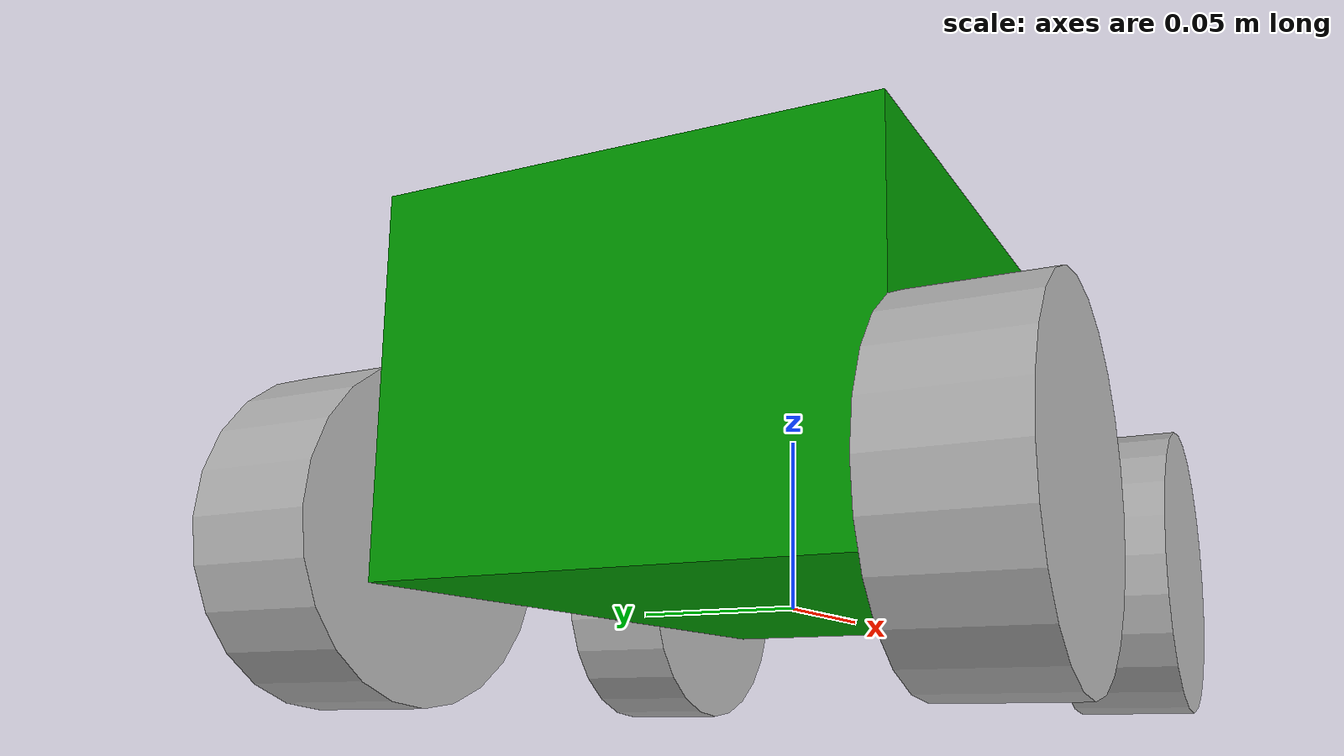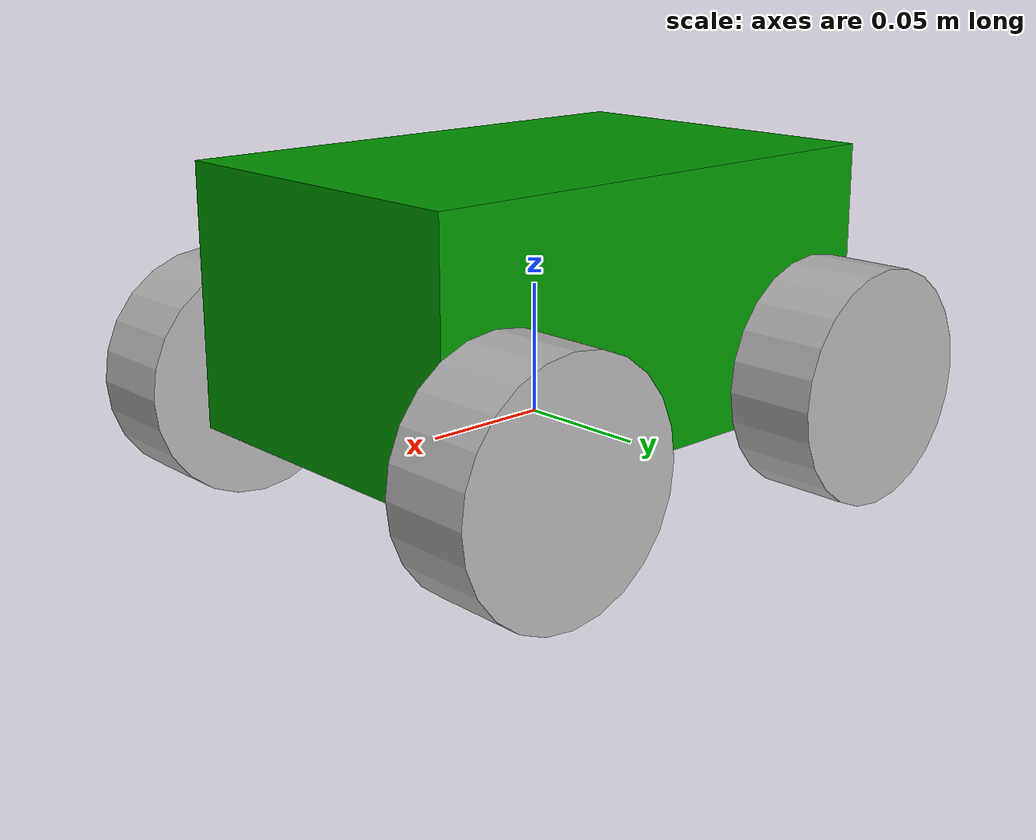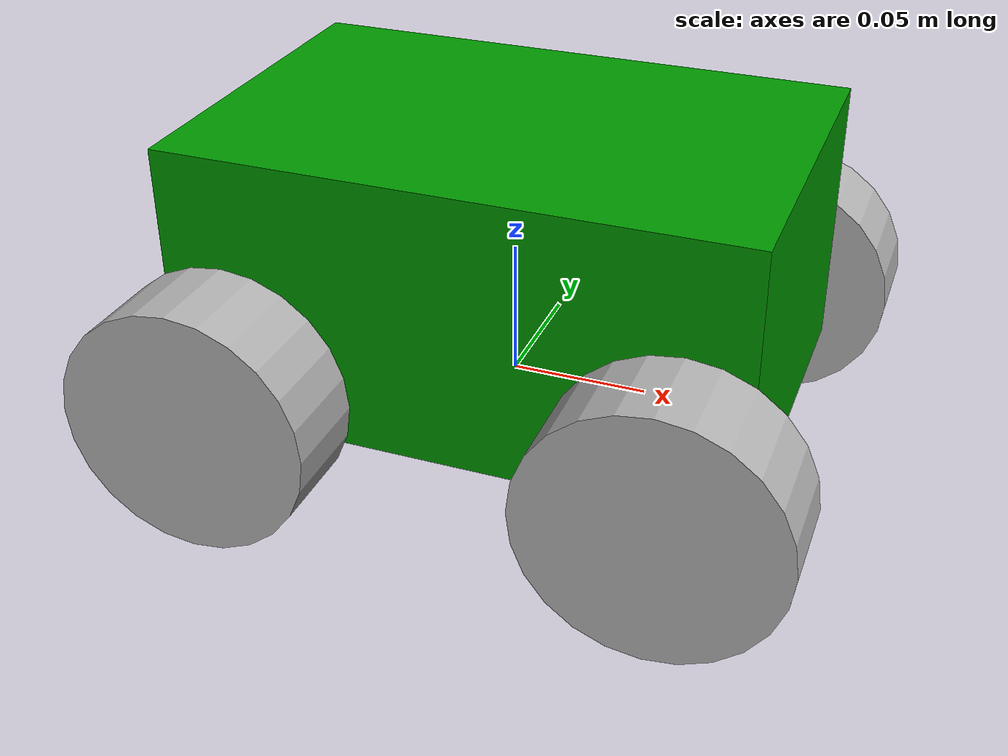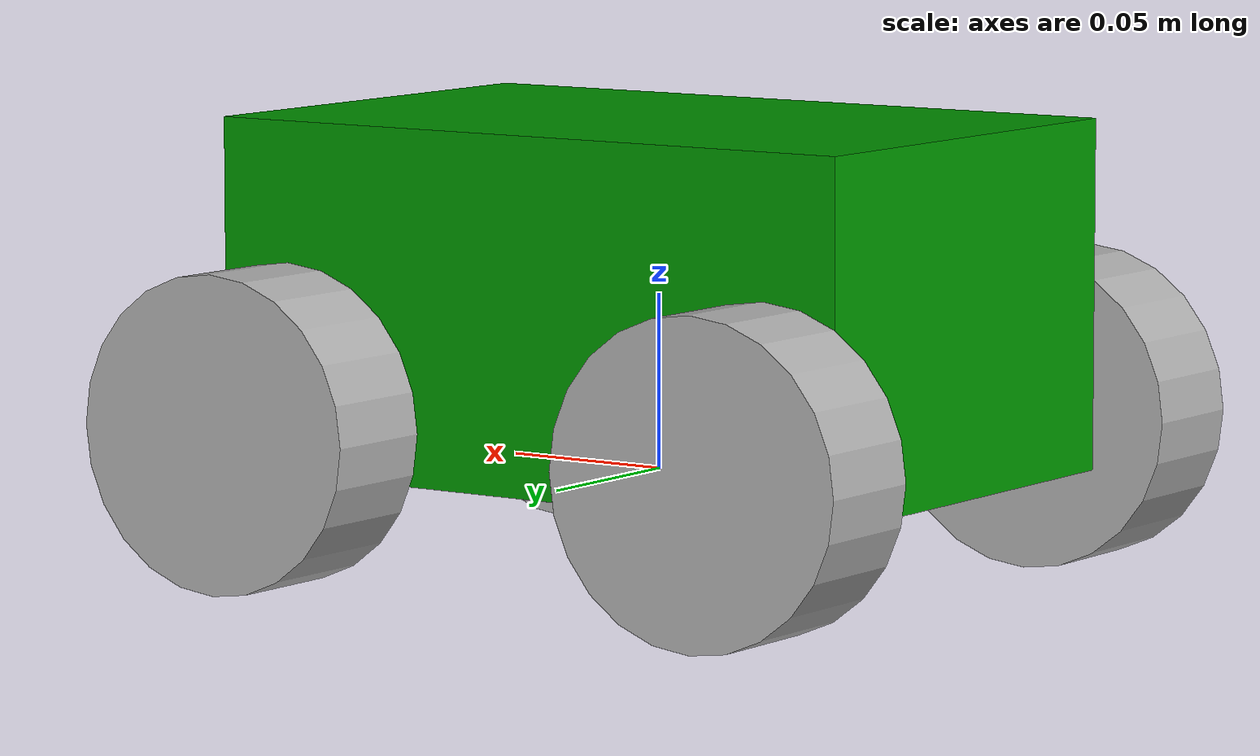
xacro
<?xml version="1.0"?>
<robot xmlns:xacro="http://www.ros.org/wiki/xacro" name="my_robot">
<xacro:include filename="inertial_macros.xacro" />

    <material name="green">
        <color rgba="0 0.6 0 1"/>
    </material>

    <material name="grey">
        <color rgba="0.7 0.7 0.7 1"/>
    </material>

    <link name="base_link">
        <visual>
            <geometry>
                <box size="0.205 0.135 0.1" />
            </geometry>
            <origin xyz="0 0 0.05" rpy= "0 0 0" />
            <material name="green" />
        </visual>

        <collision>
            <geometry>
                <box size="0.205 0.135 0.1" />
            </geometry>
            <origin xyz="0 0 0.05" rpy= "0 0 0" />
        </collision>
        <xacro:inertial_box mass="0.5" x="0.205" y="0.135" z="0.1">
        <origin xyz="0 0 0.05" rpy="0 0 0"/>
        </xacro:inertial_box>
    </link>

    <link name="base_footprint"/>
    <joint name="base_footprint_joint" type="fixed">
        <parent link="base_link"/>
        <child link="base_footprint" />
        <origin xyz="0 0 0" rpy= "0 0 0" />
    </joint>

    <link name="left_rear_wheel">
        <visual>
            <geometry>
                <cylinder  radius="0.045" length="0.035"/>
            </geometry>
            <origin xyz="0 0 0" rpy= "1.57 0 0" />
            <material name="grey" />
        </visual>

        <collision>
            <geometry>
                <cylinder  radius="0.045" length="0.035"/>
            </geometry>
            <origin xyz="0 0 0" rpy= "1.57 0 0" />
        </collision>
        <xacro:inertial_cylinder mass="0.1" length="0.035" radius="0.045">
        <origin xyz="0 0 0" rpy="0 0 0"/>
        </xacro:inertial_cylinder>
    </link>

    <link name="right_rear_wheel">
        <visual>
            <geometry>
                <cylinder  radius="0.045" length="0.035"/>
            </geometry>
            <origin xyz="0 0 0" rpy= "1.57 0 0" />
            <material name="grey" />
        </visual>

        <collision>
            <geometry>
                <cylinder  radius="0.045" length="0.035"/>
            </geometry>
            <origin xyz="0 0 0" rpy= "1.57 0 0" />
        </collision>
        <xacro:inertial_cylinder mass="0.1" length="0.035" radius="0.045">
        <origin xyz="0 0 0" rpy="0 0 0"/>
        </xacro:inertial_cylinder>
    </link>

    <link name="left_front_wheel">
        <visual>
            <geometry>
                <cylinder  radius="0.045" length="0.035"/>
            </geometry>
            <origin xyz="0 0 0" rpy= "1.57 0 0" />
            <material name="grey" />
        </visual>

        <collision>
            <geometry>
                <cylinder  radius="0.045" length="0.035"/>
            </geometry>
            <origin xyz="0 0 0" rpy= "1.57 0 0" />
        </collision>
        <xacro:inertial_cylinder mass="0.1" length="0.035" radius="0.045">
        <origin xyz="0 0 0" rpy="0 0 0"/>
        </xacro:inertial_cylinder>
    </link>

    <link name="right_front_wheel">
        <visual>
            <geometry>
                <cylinder  radius="0.045" length="0.035"/>
            </geometry>
            <origin xyz="0 0 0" rpy= "1.57 0 0" />
            <material name="grey" />
        </visual>

        <collision>
            <geometry>
                <cylinder  radius="0.045" length="0.035"/>
            </geometry>
            <origin xyz="0 0 0" rpy= "1.57 0 0" />
        </collision>
        <xacro:inertial_cylinder mass="0.1" length="0.035" radius="0.045">
        <origin xyz="0 0 0" rpy="0 0 0"/>
        </xacro:inertial_cylinder>

    </link>

    <joint name="base_left_rear_wheel_joint" type="continuous">
        <parent link="base_link"/>
        <child link="left_rear_wheel" />
        <origin xyz="-0.08 0.085 0.015" rpy= "0 0 0" />
        <axis xyz="0 1 0" />
    </joint>

    <joint name="base_left_front_wheel_joint" type="continuous">
        <parent link="base_link"/>
        <child link="left_front_wheel" />
        <origin xyz="0.08 0.085 0.015" rpy= "0 0 0" />
        <axis xyz="0 1 0" />
    </joint>

    <joint name="base_right_rear_wheel_joint" type="continuous">
        <parent link="base_link"/>
        <child link="right_rear_wheel" />
        <origin xyz="-0.08 -0.085 0.015" rpy= "0 0 0" />
        <axis xyz="0 1 0" />
    </joint>

    <joint name="base_right_front_wheel_joint" type="continuous">
        <parent link="base_link"/>
        <child link="right_front_wheel" />
        <origin xyz="0.08 -0.085 0.015" rpy= "0 0 0" />
        <axis xyz="0 1 0" />
    </joint>

</robot>
